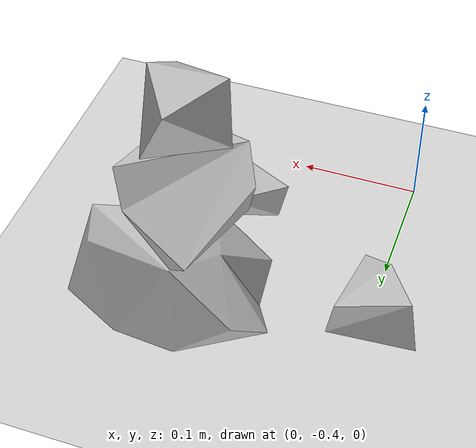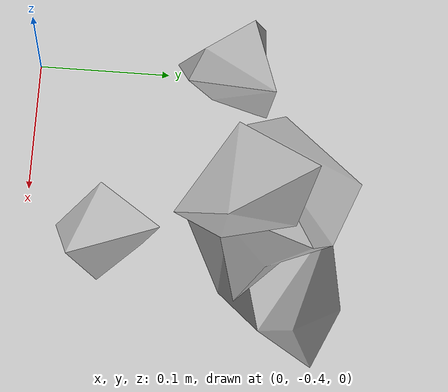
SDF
<sdf version="1.5">
 <world name="default">
  <light name="sun" type="directional">
   <pose>0 0 10 0 -0 0</pose>
   <diffuse>0.8 0.8 0.8 1</diffuse>
   <specular>0.2 0.2 0.2 1</specular>
   <attenuation>
    <range>1000</range>
    <constant>0.9</constant>
    <linear>0.01</linear>
    <quadratic>0.001</quadratic>
   </attenuation>
   <direction>-0.5 0.1 -0.9</direction>
  </light>
  <model name="ground_plane">
   <static>1</static>
   <link name="link">
    <collision name="collision">
     <geometry><plane><normal>0 0 1</normal><size>100 100</size></plane></geometry>
     <surface><friction><ode><mu>100</mu><mu2>50</mu2></ode></friction></surface>
    </collision>
    <visual name="visual">
     <cast_shadows>0</cast_shadows>
     <geometry><plane><normal>0 0 1</normal><size>100 100</size></plane></geometry>
     <material>
      <script><uri>file://media/materials/scripts/gazebo.material</uri><name>Gazebo/Grey</name></script>
     </material>
    </visual>
   </link>
  </model>
  <physics name="default_physics" default="0" type="ode">
   <max_step_size>0.001</max_step_size>
   <real_time_factor>1</real_time_factor>
   <real_time_update_rate>1000</real_time_update_rate>
   <gravity>0 0 -9.8</gravity>
   <magnetic_field>6e-06 2.3e-05 -4.2e-05</magnetic_field>
  </physics>
  <scene><ambient>0.4 0.4 0.4 1</ambient><background>0.7 0.7 0.7 1</background><shadows>1</shadows></scene>
  <spherical_coordinates>
   <surface_model>EARTH_WGS84</surface_model>
   <latitude_deg>0</latitude_deg>
   <longitude_deg>0</longitude_deg>
   <elevation>0</elevation>
   <heading_deg>0</heading_deg>
  </spherical_coordinates>
  <model name="1_poly">
   <link name="base_link">
    <inertial>
     <pose>0.017272 0.003611 0.010638 0 -0 0</pose>
     <mass>1</mass>
     <inertia>
      <ixx>0.00063821</ixx>
      <ixy>0</ixy>
      <ixz>0</ixz>
      <iyy>0.00105141</iyy>
      <iyz>0</iyz>
      <izz>0.00110947</izz>
     </inertia>
    </inertial>
    <collision name="base_link_inertia_collision">
     <geometry>
      <mesh>
       <scale>1 1 1</scale>
       <uri>/home/yoshidah/catkin_ws/src/urdf_models/urdf_models/models/polygons/1_poly.stl</uri>
      </mesh>
     </geometry>
     <surface>
      <bounce><restitution_coefficient>0.1</restitution_coefficient><threshold>0</threshold></bounce>
      <contact><ode><max_vel>0.1</max_vel><min_depth>0.001</min_depth><kp>5e+06</kp><kd>1</kd></ode></contact>
      <friction><ode><mu>1.2</mu><mu2>1.1</mu2><fdir1>1 0 0</fdir1></ode></friction>
     </surface>
    </collision>
    <visual name="base_link_inertia_visual">
     <geometry>
      <mesh>
       <scale>1 1 1</scale>
       <uri>/home/yoshidah/catkin_ws/src/urdf_models/urdf_models/models/polygons/1_poly.stl</uri>
      </mesh>
     </geometry>
     <material>
      <script><name>color</name><uri>file://media/materials/scripts/gazebo.material</uri></script>
     </material>
    </visual>
   </link>
   <pose>0.136345 -0.220859 0.025868 -0.361535 -0.225869 0.288643</pose>
  </model>
  <model name="2_poly">
   <link name="base_link">
    <inertial>
     <pose>-0.016006 0.004918 0.008051 0 -0 0</pose>
     <mass>1</mass>
     <inertia>
      <ixx>0.0003455</ixx>
      <ixy>1.48e-06</ixy>
      <ixz>1.628e-05</ixz>
      <iyy>0.00038334</iyy>
      <iyz>1.259e-05</iyz>
      <izz>0.00036534</izz>
     </inertia>
    </inertial>
    <collision name="base_link_inertia_collision">
     <geometry>
      <mesh>
       <scale>1 1 1</scale>
       <uri>/home/yoshidah/catkin_ws/src/urdf_models/urdf_models/models/polygons/2_poly_config_2.dae</uri>
      </mesh>
     </geometry>
     <surface>
      <bounce><restitution_coefficient>0.1</restitution_coefficient><threshold>0</threshold></bounce>
      <contact><ode><max_vel>0.1</max_vel><min_depth>0.001</min_depth><kp>5e+06</kp><kd>1</kd></ode></contact>
      <friction><ode><mu>1.2</mu><mu2>1.1</mu2><fdir1>1 0 0</fdir1></ode></friction>
     </surface>
    </collision>
    <visual name="base_link_inertia_visual">
     <geometry>
      <mesh>
       <scale>1 1 1</scale>
       <uri>/home/yoshidah/catkin_ws/src/urdf_models/urdf_models/models/polygons/2_poly_config_2.dae</uri>
      </mesh>
     </geometry>
     <material>
      <script><name>color</name><uri>file://media/materials/scripts/gazebo.material</uri></script>
     </material>
    </visual>
   </link>
   <pose>0.15537 -0.222716 0.116465 -0.005879 0.001247 -0.214114</pose>
  </model>
  <model name="3_poly">
   <link name="base_link">
    <inertial>
     <pose>-0.00425 -0.000186 0.00043 0 -0 0</pose>
     <mass>1</mass>
     <inertia>
      <ixx>5.698e-05</ixx>
      <ixy>0</ixy>
      <ixz>0</ixz>
      <iyy>7.699e-05</iyy>
      <iyz>0</iyz>
      <izz>8.392e-05</izz>
     </inertia>
    </inertial>
    <collision name="base_link_inertia_collision">
     <geometry>
      <mesh>
       <scale>1 1 1</scale>
       <uri>/home/yoshidah/catkin_ws/src/urdf_models/urdf_models/models/polygons/3_poly.stl</uri>
      </mesh>
     </geometry>
     <surface>
      <bounce><restitution_coefficient>0.1</restitution_coefficient><threshold>0</threshold></bounce>
      <contact><ode><max_vel>0.1</max_vel><min_depth>0.001</min_depth><kp>5e+06</kp><kd>1</kd></ode></contact>
      <friction><ode><mu>1.2</mu><mu2>1.1</mu2><fdir1>1 0 0</fdir1></ode></friction>
     </surface>
    </collision>
    <visual name="base_link_inertia_visual">
     <geometry>
      <mesh>
       <scale>1 1 1</scale>
       <uri>/home/yoshidah/catkin_ws/src/urdf_models/urdf_models/models/polygons/3_poly.stl</uri>
      </mesh>
     </geometry>
     <material>
      <script><name>color</name><uri>file://media/materials/scripts/gazebo.material</uri></script>
     </material>
    </visual>
   </link>
   <pose>0.148838 -0.234117 0.187115 -0.641802 0.220692 -0.938492</pose>
  </model>
  <model name="4_poly">
   <link name="base_link">
    <inertial>
     <pose>-0.001571 2.7e-05 0.002402 0 -0 0</pose>
     <mass>1</mass>
     <inertia>
      <ixx>3.6725e-05</ixx>
      <ixy>4.53847e-06</ixy>
      <ixz>1.34768e-07</ixz>
      <iyy>4.4746e-05</iyy>
      <iyz>-5.70707e-07</iyz>
      <izz>3.9079e-05</izz>
     </inertia>
    </inertial>
    <collision name="base_link_inertia_collision">
     <pose>0 0 0 -2.21 -1.47 0.215</pose>
     <geometry>
      <mesh>
       <scale>1 1 1</scale>
       <uri>/home/yoshidah/catkin_ws/src/urdf_models/urdf_models/models/polygons/4_poly_3.stl</uri>
      </mesh>
     </geometry>
     <surface>
      <bounce><restitution_coefficient>0.1</restitution_coefficient><threshold>0</threshold></bounce>
      <contact><ode><max_vel>0.1</max_vel><min_depth>0.001</min_depth><kp>5e+06</kp><kd>1</kd></ode></contact>
      <friction><ode><mu>1.2</mu><mu2>1.1</mu2><fdir1>1 0 0</fdir1></ode></friction>
     </surface>
    </collision>
    <visual name="base_link_inertia_visual">
     <pose>0 0 0 -2.21 -1.47 0.215</pose>
     <geometry>
      <mesh>
       <scale>1 1 1</scale>
       <uri>/home/yoshidah/catkin_ws/src/urdf_models/urdf_models/models/polygons/4_poly_3.stl</uri>
      </mesh>
     </geometry>
     <material>
      <script><name>color</name><uri>file://media/materials/scripts/gazebo.material</uri></script>
     </material>
    </visual>
   </link>
   <pose>-0.001424 -0.252334 0.019075 1.76282 -0.299109 -1.76346</pose>
  </model>
  <model name="5_poly">
   <link name="base_link">
    <inertial>
     <pose>0.000876 0.001079 -0.001463 0 -0 0</pose>
     <mass>1</mass>
     <inertia>
      <ixx>0.0002472</ixx>
      <ixy>0</ixy>
      <ixz>0</ixz>
      <iyy>0.0002012</iyy>
      <iyz>0</iyz>
      <izz>0.0003289</izz>
     </inertia>
    </inertial>
    <collision name="base_link_inertia_collision">
     <geometry>
      <mesh>
       <scale>1 1 1</scale>
       <uri>/home/yoshidah/catkin_ws/src/urdf_models/urdf_models/models/polygons/5_poly.stl</uri>
      </mesh>
     </geometry>
     <surface>
      <bounce><restitution_coefficient>0.1</restitution_coefficient><threshold>0</threshold></bounce>
      <contact><ode><max_vel>0.1</max_vel><min_depth>0.001</min_depth><kp>5e+06</kp><kd>1</kd></ode></contact>
      <friction><ode><mu>1.2</mu><mu2>1.1</mu2><fdir1>1 0 0</fdir1></ode></friction>
     </surface>
    </collision>
    <visual name="base_link_inertia_visual">
     <geometry>
      <mesh>
       <scale>1 1 1</scale>
       <uri>/home/yoshidah/catkin_ws/src/urdf_models/urdf_models/models/polygons/5_poly.stl</uri>
      </mesh>
     </geometry>
     <material>
      <script><name>color</name><uri>file://media/materials/scripts/gazebo.material</uri></script>
     </material>
    </visual>
   </link>
   <pose>0.13372 -0.338012 0.016024 -2.83374 -0.181491 0.1793</pose>
  </model>
  <light name="user_point_light_2" type="point">
   <pose>0 -0.2 0.1 0 -0 0</pose>
   <diffuse>0.498039 0.498039 0.498039 1</diffuse>
   <specular>0.0980392 0.0980392 0.0980392 1</specular>
   <attenuation>
    <range>20</range>
    <constant>0.5</constant>
    <linear>0.01</linear>
    <quadratic>0.001</quadratic>
   </attenuation>
   <cast_shadows>0</cast_shadows>
   <direction>0 0 -1</direction>
  </light>
 </world>
</sdf>
